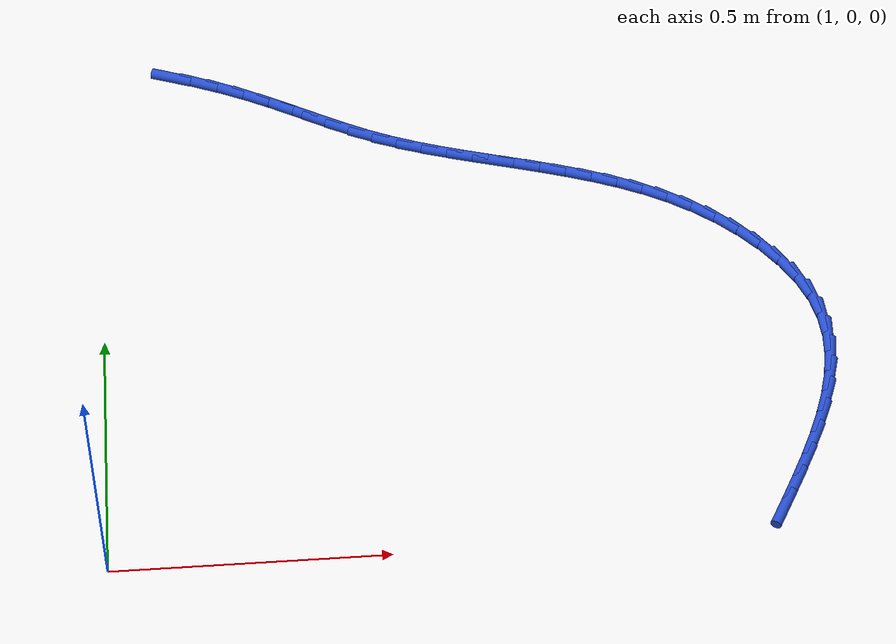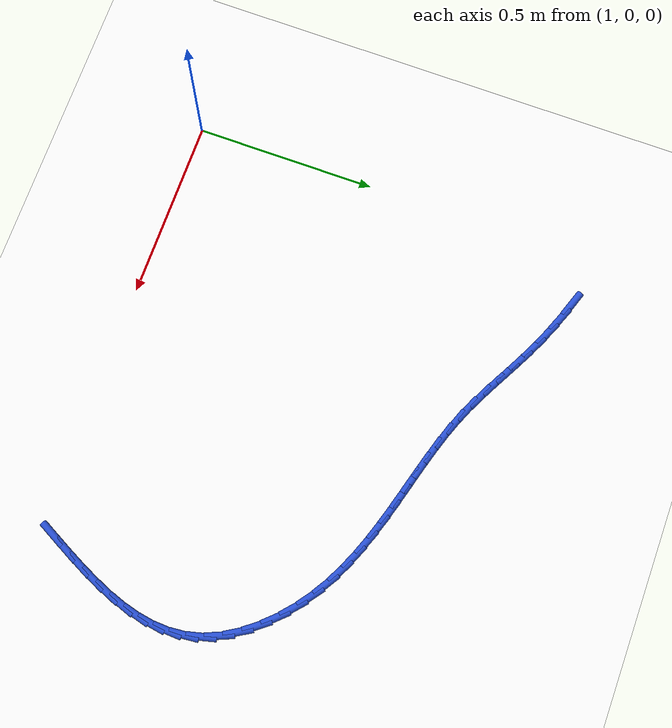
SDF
<sdf version="1.6">
 <world name="default">
  <model name="ground_plane">
   <static>1</static>
   <link name="link">
    <collision name="collision">
     <geometry><plane><normal>0 0 1</normal><size>100 100</size></plane></geometry>
     <surface><friction><ode><mu>100</mu><mu2>50</mu2></ode></friction></surface>
    </collision>
    <visual name="visual">
     <cast_shadows>0</cast_shadows>
     <geometry><plane><normal>0 0 1</normal><size>100 100</size></plane></geometry>
     <material>
      <script><uri>file://media/materials/scripts/gazebo.material</uri><name>Gazebo/WhiteGlow</name></script>
     </material>
    </visual>
   </link>
  </model>
  <model name="line">
   <link name="link_36">
    <pose>1.1368722091052053 1.127843138672841 0.01 0 1.57 -0.33295802760124027</pose>
    <collision name="collision">
     <geometry><cylinder><radius>0.01</radius><length>0.08</length></cylinder></geometry>
    </collision>
    <visual name="visual">
     <material>
      <script><name>Gazebo/Blue</name><uri>file://media/materials/scripts/gazebo.material</uri></script>
     </material>
     <geometry><cylinder><radius>0.01</radius><length>0.08</length></cylinder></geometry>
    </visual>
   </link>
   <link name="link_37">
    <pose>1.1889043025116077 1.1098487079795605 0.01 0 1.57 -0.38025601819773913</pose>
    <collision name="collision">
     <geometry><cylinder><radius>0.01</radius><length>0.08</length></cylinder></geometry>
    </collision>
    <visual name="visual">
     <material>
      <script><name>Gazebo/Blue</name><uri>file://media/materials/scripts/gazebo.material</uri></script>
     </material>
     <geometry><cylinder><radius>0.01</radius><length>0.08</length></cylinder></geometry>
    </visual>
   </link>
   <link name="link_38">
    <pose>1.2394646152641324 1.08963926494957 0.01 0 1.57 -0.4245283396938669</pose>
    <collision name="collision">
     <geometry><cylinder><radius>0.01</radius><length>0.08</length></cylinder></geometry>
    </collision>
    <visual name="visual">
     <material>
      <script><name>Gazebo/Blue</name><uri>file://media/materials/scripts/gazebo.material</uri></script>
     </material>
     <geometry><cylinder><radius>0.01</radius><length>0.08</length></cylinder></geometry>
    </visual>
   </link>
   <link name="link_39">
    <pose>1.288000413019827 1.0677003562073164 0.01 0 1.57 -0.46350981282754633</pose>
    <collision name="collision">
     <geometry><cylinder><radius>0.01</radius><length>0.08</length></cylinder></geometry>
    </collision>
    <visual name="visual">
     <material>
      <script><name>Gazebo/Blue</name><uri>file://media/materials/scripts/gazebo.material</uri></script>
     </material>
     <geometry><cylinder><radius>0.01</radius><length>0.08</length></cylinder></geometry>
    </visual>
   </link>
   <link name="link_40">
    <pose>1.334278481395089 1.044569292646485 0.01 0 1.57 -0.4877704352281412</pose>
    <collision name="collision">
     <geometry><cylinder><radius>0.01</radius><length>0.08</length></cylinder></geometry>
    </collision>
    <visual name="visual">
     <material>
      <script><name>Gazebo/Blue</name><uri>file://media/materials/scripts/gazebo.material</uri></script>
     </material>
     <geometry><cylinder><radius>0.01</radius><length>0.08</length></cylinder></geometry>
    </visual>
   </link>
   <link name="link_41">
    <pose>1.378867915565967 1.0209133644213495 0.01 0 1.57 -0.49429398240632344</pose>
    <collision name="collision">
     <geometry><cylinder><radius>0.01</radius><length>0.08</length></cylinder></geometry>
    </collision>
    <visual name="visual">
     <material>
      <script><name>Gazebo/Blue</name><uri>file://media/materials/scripts/gazebo.material</uri></script>
     </material>
     <geometry><cylinder><radius>0.01</radius><length>0.08</length></cylinder></geometry>
    </visual>
   </link>
   <link name="link_42">
    <pose>1.4224617331340297 0.997419937908691 0.01 0 1.57 -0.4819186823524124</pose>
    <collision name="collision">
     <geometry><cylinder><radius>0.01</radius><length>0.08</length></cylinder></geometry>
    </collision>
    <visual name="visual">
     <material>
      <script><name>Gazebo/Blue</name><uri>file://media/materials/scripts/gazebo.material</uri></script>
     </material>
     <geometry><cylinder><radius>0.01</radius><length>0.08</length></cylinder></geometry>
    </visual>
   </link>
   <link name="link_43">
    <pose>1.4657529517008454 0.9747763794852897 0.01 0 1.57 -0.45010557070894686</pose>
    <collision name="collision">
     <geometry><cylinder><radius>0.01</radius><length>0.08</length></cylinder></geometry>
    </collision>
    <visual name="visual">
     <material>
      <script><name>Gazebo/Blue</name><uri>file://media/materials/scripts/gazebo.material</uri></script>
     </material>
     <geometry><cylinder><radius>0.01</radius><length>0.08</length></cylinder></geometry>
    </visual>
   </link>
   <link name="link_44">
    <pose>1.5094345888679837 0.9536700555279268 0.01 0 1.57 -0.40035812389498227</pose>
    <collision name="collision">
     <geometry><cylinder><radius>0.01</radius><length>0.08</length></cylinder></geometry>
    </collision>
    <visual name="visual">
     <material>
      <script><name>Gazebo/Blue</name><uri>file://media/materials/scripts/gazebo.material</uri></script>
     </material>
     <geometry><cylinder><radius>0.01</radius><length>0.08</length></cylinder></geometry>
    </visual>
   </link>
   <link name="link_45">
    <pose>1.5541625938978998 0.9347404739728999 0.01 0 1.57 -0.35026342725918364</pose>
    <collision name="collision">
     <geometry><cylinder><radius>0.01</radius><length>0.08</length></cylinder></geometry>
    </collision>
    <visual name="visual">
     <material>
      <script><name>Gazebo/Blue</name><uri>file://media/materials/scripts/gazebo.material</uri></script>
     </material>
     <geometry><cylinder><radius>0.01</radius><length>0.08</length></cylinder></geometry>
    </visual>
   </link>
   <link name="link_46">
    <pose>1.6000804103710453 0.9179654534748806 0.01 0 1.57 -0.3121177123310492</pose>
    <collision name="collision">
     <geometry><cylinder><radius>0.01</radius><length>0.08</length></cylinder></geometry>
    </collision>
    <visual name="visual">
     <material>
      <script><name>Gazebo/Blue</name><uri>file://media/materials/scripts/gazebo.material</uri></script>
     </material>
     <geometry><cylinder><radius>0.01</radius><length>0.08</length></cylinder></geometry>
    </visual>
   </link>
   <link name="link_47">
    <pose>1.6469574564346314 0.9028399134175215 0.01 0 1.57 -0.2859151595598011</pose>
    <collision name="collision">
     <geometry><cylinder><radius>0.01</radius><length>0.08</length></cylinder></geometry>
    </collision>
    <visual name="visual">
     <material>
      <script><name>Gazebo/Blue</name><uri>file://media/materials/scripts/gazebo.material</uri></script>
     </material>
     <geometry><cylinder><radius>0.01</radius><length>0.08</length></cylinder></geometry>
    </visual>
   </link>
   <link name="link_48">
    <pose>1.694554642234472 0.8888477886168304 0.01 0 1.57 -0.27132738609206714</pose>
    <collision name="collision">
     <geometry><cylinder><radius>0.01</radius><length>0.08</length></cylinder></geometry>
    </collision>
    <visual name="visual">
     <material>
      <script><name>Gazebo/Blue</name><uri>file://media/materials/scripts/gazebo.material</uri></script>
     </material>
     <geometry><cylinder><radius>0.01</radius><length>0.08</length></cylinder></geometry>
    </visual>
   </link>
   <link name="link_49">
    <pose>1.74263287791638 0.8754730138888163 0.01 0 1.57 -0.26808597486838165</pose>
    <collision name="collision">
     <geometry><cylinder><radius>0.01</radius><length>0.08</length></cylinder></geometry>
    </collision>
    <visual name="visual">
     <material>
      <script><name>Gazebo/Blue</name><uri>file://media/materials/scripts/gazebo.material</uri></script>
     </material>
     <geometry><cylinder><radius>0.01</radius><length>0.08</length></cylinder></geometry>
    </visual>
   </link>
   <link name="link_50">
    <pose>1.7909530736261712 0.8621995240494872 0.01 0 1.57 -0.27603446937864645</pose>
    <collision name="collision">
     <geometry><cylinder><radius>0.01</radius><length>0.08</length></cylinder></geometry>
    </collision>
    <visual name="visual">
     <material>
      <script><name>Gazebo/Blue</name><uri>file://media/materials/scripts/gazebo.material</uri></script>
     </material>
     <geometry><cylinder><radius>0.01</radius><length>0.08</length></cylinder></geometry>
    </visual>
   </link>
   <link name="link_51">
    <pose>1.8392761395096586 0.8485112539148516 0.01 0 1.57 -0.2951360661776336</pose>
    <collision name="collision">
     <geometry><cylinder><radius>0.01</radius><length>0.08</length></cylinder></geometry>
    </collision>
    <visual name="visual">
     <material>
      <script><name>Gazebo/Blue</name><uri>file://media/materials/scripts/gazebo.material</uri></script>
     </material>
     <geometry><cylinder><radius>0.01</radius><length>0.08</length></cylinder></geometry>
    </visual>
   </link>
   <link name="link_52">
    <pose>1.8873629857126564 0.833892138300918 0.01 0 1.57 -0.3254417888255941</pose>
    <collision name="collision">
     <geometry><cylinder><radius>0.01</radius><length>0.08</length></cylinder></geometry>
    </collision>
    <visual name="visual">
     <material>
      <script><name>Gazebo/Blue</name><uri>file://media/materials/scripts/gazebo.material</uri></script>
     </material>
     <geometry><cylinder><radius>0.01</radius><length>0.08</length></cylinder></geometry>
    </visual>
   </link>
   <link name="link_53">
    <pose>1.934974522380978 0.8178261120236942 0.01 0 1.57 -0.3670185643590996</pose>
    <collision name="collision">
     <geometry><cylinder><radius>0.01</radius><length>0.08</length></cylinder></geometry>
    </collision>
    <visual name="visual">
     <material>
      <script><name>Gazebo/Blue</name><uri>file://media/materials/scripts/gazebo.material</uri></script>
     </material>
     <geometry><cylinder><radius>0.01</radius><length>0.08</length></cylinder></geometry>
    </visual>
   </link>
   <link name="link_54">
    <pose>1.9818716596604384 0.7997971098991886 0.01 0 1.57 -0.4198343302029406</pose>
    <collision name="collision">
     <geometry><cylinder><radius>0.01</radius><length>0.08</length></cylinder></geometry>
    </collision>
    <visual name="visual">
     <material>
      <script><name>Gazebo/Blue</name><uri>file://media/materials/scripts/gazebo.material</uri></script>
     </material>
     <geometry><cylinder><radius>0.01</radius><length>0.08</length></cylinder></geometry>
    </visual>
   </link>
   <link name="link_55">
    <pose>2.0278153076968506 0.77928906674341 0.01 0 1.57 -0.48360181227801835</pose>
    <collision name="collision">
     <geometry><cylinder><radius>0.01</radius><length>0.08</length></cylinder></geometry>
    </collision>
    <visual name="visual">
     <material>
      <script><name>Gazebo/Blue</name><uri>file://media/materials/scripts/gazebo.material</uri></script>
     </material>
     <geometry><cylinder><radius>0.01</radius><length>0.08</length></cylinder></geometry>
    </visual>
   </link>
   <link name="link_56">
    <pose>2.072566376636029 0.7557859173723664 0.01 0 1.57 -0.557597640164174</pose>
    <collision name="collision">
     <geometry><cylinder><radius>0.01</radius><length>0.08</length></cylinder></geometry>
    </collision>
    <visual name="visual">
     <material>
      <script><name>Gazebo/Blue</name><uri>file://media/materials/scripts/gazebo.material</uri></script>
     </material>
     <geometry><cylinder><radius>0.01</radius><length>0.08</length></cylinder></geometry>
    </visual>
   </link>
   <link name="link_57">
    <pose>2.115885776623789 0.7287715966020665 0.01 0 1.57 -0.639975336477577</pose>
    <collision name="collision">
     <geometry><cylinder><radius>0.01</radius><length>0.08</length></cylinder></geometry>
    </collision>
    <visual name="visual">
     <material>
      <script><name>Gazebo/Blue</name><uri>file://media/materials/scripts/gazebo.material</uri></script>
     </material>
     <geometry><cylinder><radius>0.01</radius><length>0.08</length></cylinder></geometry>
    </visual>
   </link>
   <link name="link_58">
    <pose>2.1574827591603647 0.6978024148488906 0.01 0 1.57 -0.7255757063611656</pose>
    <collision name="collision">
     <geometry><cylinder><radius>0.01</radius><length>0.08</length></cylinder></geometry>
    </collision>
    <visual name="visual">
     <material>
      <script><name>Gazebo/Blue</name><uri>file://media/materials/scripts/gazebo.material</uri></script>
     </material>
     <geometry><cylinder><radius>0.01</radius><length>0.08</length></cylinder></geometry>
    </visual>
   </link>
   <link name="link_59">
    <pose>2.196565407601197 0.6631368369307228 0.01 0 1.57 -0.8156354795578555</pose>
    <collision name="collision">
     <geometry><cylinder><radius>0.01</radius><length>0.08</length></cylinder></geometry>
    </collision>
    <visual name="visual">
     <material>
      <script><name>Gazebo/Blue</name><uri>file://media/materials/scripts/gazebo.material</uri></script>
     </material>
     <geometry><cylinder><radius>0.01</radius><length>0.08</length></cylinder></geometry>
    </visual>
   </link>
   <link name="link_60">
    <pose>2.232060146209422 0.6254279420746713 0.01 0 1.57 -0.9152886023386736</pose>
    <collision name="collision">
     <geometry><cylinder><radius>0.01</radius><length>0.08</length></cylinder></geometry>
    </collision>
    <visual name="visual">
     <material>
      <script><name>Gazebo/Blue</name><uri>file://media/materials/scripts/gazebo.material</uri></script>
     </material>
     <geometry><cylinder><radius>0.01</radius><length>0.08</length></cylinder></geometry>
    </visual>
   </link>
   <link name="link_61">
    <pose>2.262890266235847 0.5853331989695864 0.01 0 1.57 -1.0304661588988793</pose>
    <collision name="collision">
     <geometry><cylinder><radius>0.01</radius><length>0.08</length></cylinder></geometry>
    </collision>
    <visual name="visual">
     <material>
      <script><name>Gazebo/Blue</name><uri>file://media/materials/scripts/gazebo.material</uri></script>
     </material>
     <geometry><cylinder><radius>0.01</radius><length>0.08</length></cylinder></geometry>
    </visual>
   </link>
   <link name="link_62">
    <pose>2.28797905893128 0.5435100763043171 0.01 0 1.57 -1.168051368587633</pose>
    <collision name="collision">
     <geometry><cylinder><radius>0.01</radius><length>0.08</length></cylinder></geometry>
    </collision>
    <visual name="visual">
     <material>
      <script><name>Gazebo/Blue</name><uri>file://media/materials/scripts/gazebo.material</uri></script>
     </material>
     <geometry><cylinder><radius>0.01</radius><length>0.08</length></cylinder></geometry>
    </visual>
   </link>
   <link name="link_63">
    <pose>2.306253957776105 0.5006145370645906 0.01 0 1.57 -1.3245790183814914</pose>
    <collision name="collision">
     <geometry><cylinder><radius>0.01</radius><length>0.08</length></cylinder></geometry>
    </collision>
    <visual name="visual">
     <material>
      <script><name>Gazebo/Blue</name><uri>file://media/materials/scripts/gazebo.material</uri></script>
     </material>
     <geometry><cylinder><radius>0.01</radius><length>0.08</length></cylinder></geometry>
    </visual>
   </link>
   <link name="link_64">
    <pose>2.3171889000173245 0.45710388976432564 0.01 0 1.57 -1.4767651632227605</pose>
    <collision name="collision">
     <geometry><cylinder><radius>0.01</radius><length>0.08</length></cylinder></geometry>
    </collision>
    <visual name="visual">
     <material>
      <script><name>Gazebo/Blue</name><uri>file://media/materials/scripts/gazebo.material</uri></script>
     </material>
     <geometry><cylinder><radius>0.01</radius><length>0.08</length></cylinder></geometry>
    </visual>
   </link>
   <link name="link_65">
    <pose>2.32134449262715 0.41304043777113897 0.01 0 1.57 1.5274452785574018</pose>
    <collision name="collision">
     <geometry><cylinder><radius>0.01</radius><length>0.08</length></cylinder></geometry>
    </collision>
    <visual name="visual">
     <material>
      <script><name>Gazebo/Blue</name><uri>file://media/materials/scripts/gazebo.material</uri></script>
     </material>
     <geometry><cylinder><radius>0.01</radius><length>0.08</length></cylinder></geometry>
    </visual>
   </link>
   <link name="link_66">
    <pose>2.3194097957463073 0.3684397916430053 0.01 0 1.57 1.4096274718913477</pose>
    <collision name="collision">
     <geometry><cylinder><radius>0.01</radius><length>0.08</length></cylinder></geometry>
    </collision>
    <visual name="visual">
     <material>
      <script><name>Gazebo/Blue</name><uri>file://media/materials/scripts/gazebo.material</uri></script>
     </material>
     <geometry><cylinder><radius>0.01</radius><length>0.08</length></cylinder></geometry>
    </visual>
   </link>
   <link name="link_67">
    <pose>2.3120738695155225 0.3233175619378985 0.01 0 1.57 1.3126391138834492</pose>
    <collision name="collision">
     <geometry><cylinder><radius>0.01</radius><length>0.08</length></cylinder></geometry>
    </collision>
    <visual name="visual">
     <material>
      <script><name>Gazebo/Blue</name><uri>file://media/materials/scripts/gazebo.material</uri></script>
     </material>
     <geometry><cylinder><radius>0.01</radius><length>0.08</length></cylinder></geometry>
    </visual>
   </link>
   <link name="link_68">
    <pose>2.3000257740755217 0.27768935921379434 0.01 0 1.57 1.235480002311765</pose>
    <collision name="collision">
     <geometry><cylinder><radius>0.01</radius><length>0.08</length></cylinder></geometry>
    </collision>
    <visual name="visual">
     <material>
      <script><name>Gazebo/Blue</name><uri>file://media/materials/scripts/gazebo.material</uri></script>
     </material>
     <geometry><cylinder><radius>0.01</radius><length>0.08</length></cylinder></geometry>
    </visual>
   </link>
   <link name="link_69">
    <pose>2.2839545695670314 0.23157079402866707 0.01 0 1.57 1.1761630137320203</pose>
    <collision name="collision">
     <geometry><cylinder><radius>0.01</radius><length>0.08</length></cylinder></geometry>
    </collision>
    <visual name="visual">
     <material>
      <script><name>Gazebo/Blue</name><uri>file://media/materials/scripts/gazebo.material</uri></script>
     </material>
     <geometry><cylinder><radius>0.01</radius><length>0.08</length></cylinder></geometry>
    </visual>
   </link>
   <link name="link_70">
    <pose>2.264549316130777 0.18497747694049116 0.01 0 1.57 1.1325573067986086</pose>
    <collision name="collision">
     <geometry><cylinder><radius>0.01</radius><length>0.08</length></cylinder></geometry>
    </collision>
    <visual name="visual">
     <material>
      <script><name>Gazebo/Blue</name><uri>file://media/materials/scripts/gazebo.material</uri></script>
     </material>
     <geometry><cylinder><radius>0.01</radius><length>0.08</length></cylinder></geometry>
    </visual>
   </link>
   <link name="link_71">
    <pose>2.242499073907484 0.13792501850724087 0.01 0 1.57 1.102809580746991</pose>
    <collision name="collision">
     <geometry><cylinder><radius>0.01</radius><length>0.08</length></cylinder></geometry>
    </collision>
    <visual name="visual">
     <material>
      <script><name>Gazebo/Blue</name><uri>file://media/materials/scripts/gazebo.material</uri></script>
     </material>
     <geometry><cylinder><radius>0.01</radius><length>0.08</length></cylinder></geometry>
    </visual>
   </link>
   <link name="link_72">
    <pose>2.2184929030378795 0.09042902928689162 0.01 0 1.57 1.0855029022516212</pose>
    <collision name="collision">
     <geometry><cylinder><radius>0.01</radius><length>0.08</length></cylinder></geometry>
    </collision>
    <visual name="visual">
     <material>
      <script><name>Gazebo/Blue</name><uri>file://media/materials/scripts/gazebo.material</uri></script>
     </material>
     <geometry><cylinder><radius>0.01</radius><length>0.08</length></cylinder></geometry>
    </visual>
   </link>
   <link name="link_73">
    <pose>2.1932198636626903 0.0425051198374178 0.01 0 1.57 1.0796875678186968</pose>
    <collision name="collision">
     <geometry><cylinder><radius>0.01</radius><length>0.08</length></cylinder></geometry>
    </collision>
    <visual name="visual">
     <material>
      <script><name>Gazebo/Blue</name><uri>file://media/materials/scripts/gazebo.material</uri></script>
     </material>
     <geometry><cylinder><radius>0.01</radius><length>0.08</length></cylinder></geometry>
    </visual>
   </link>
  </model>
 </world>
</sdf>
